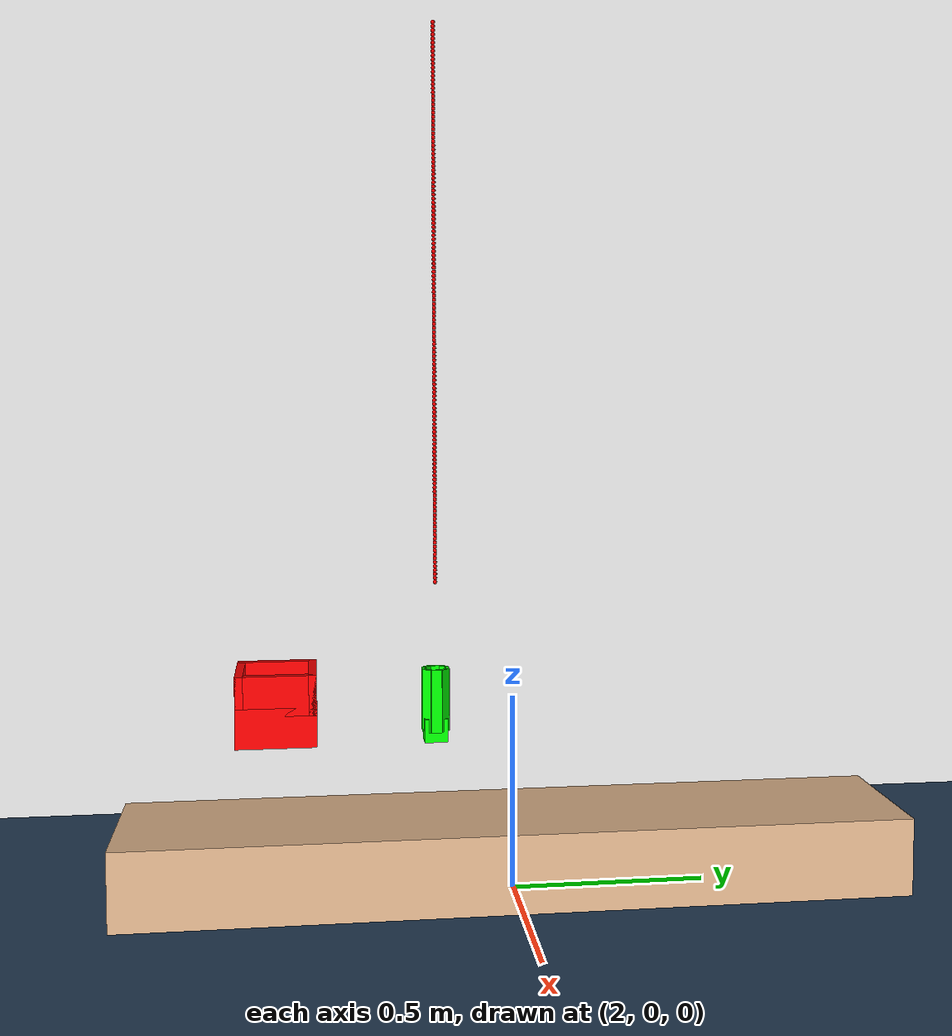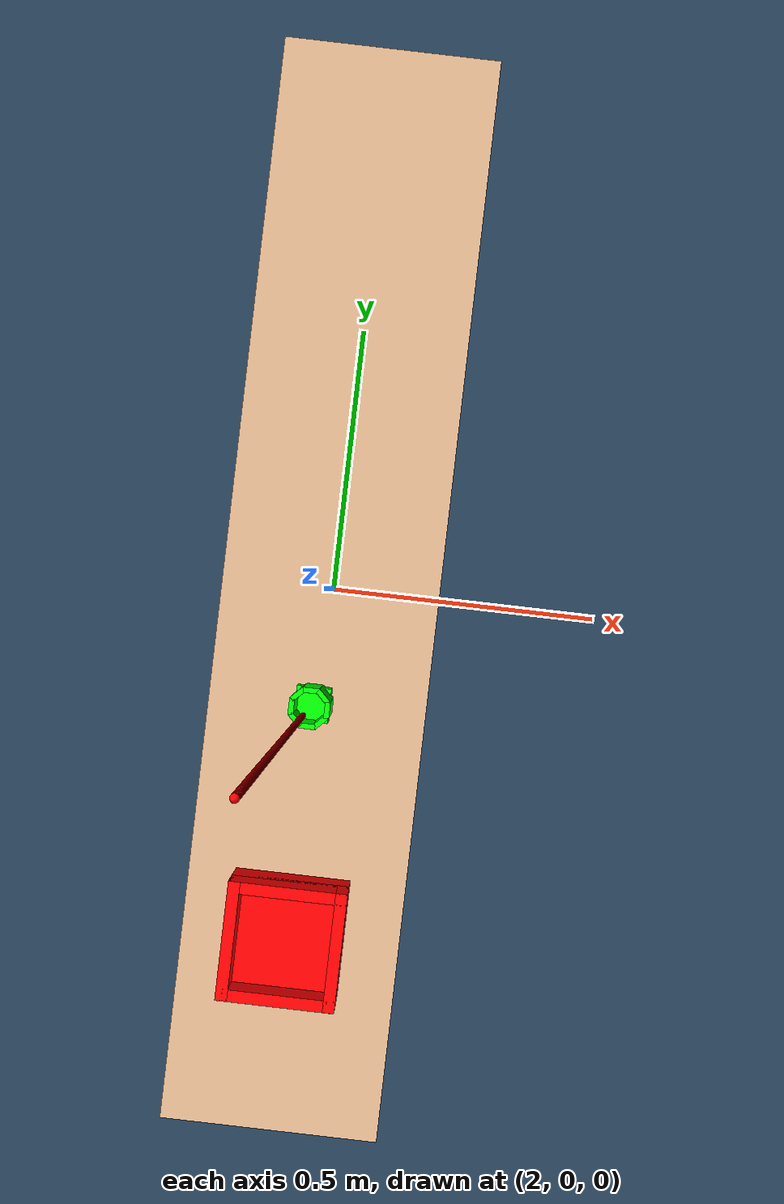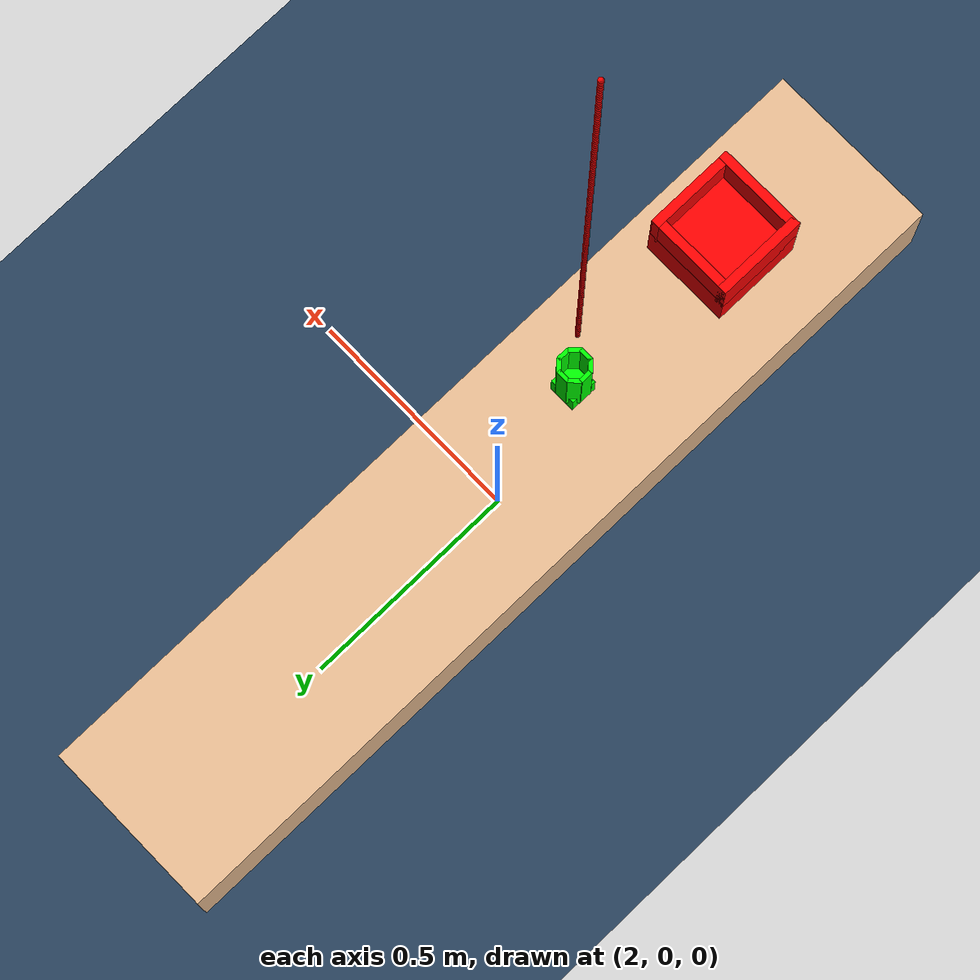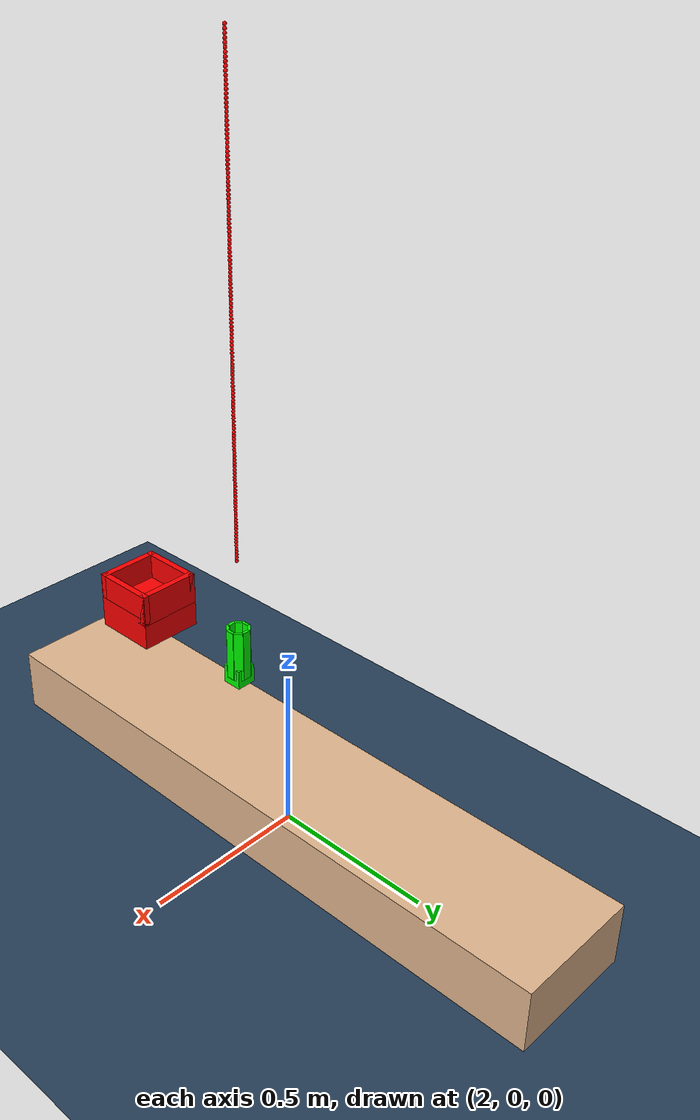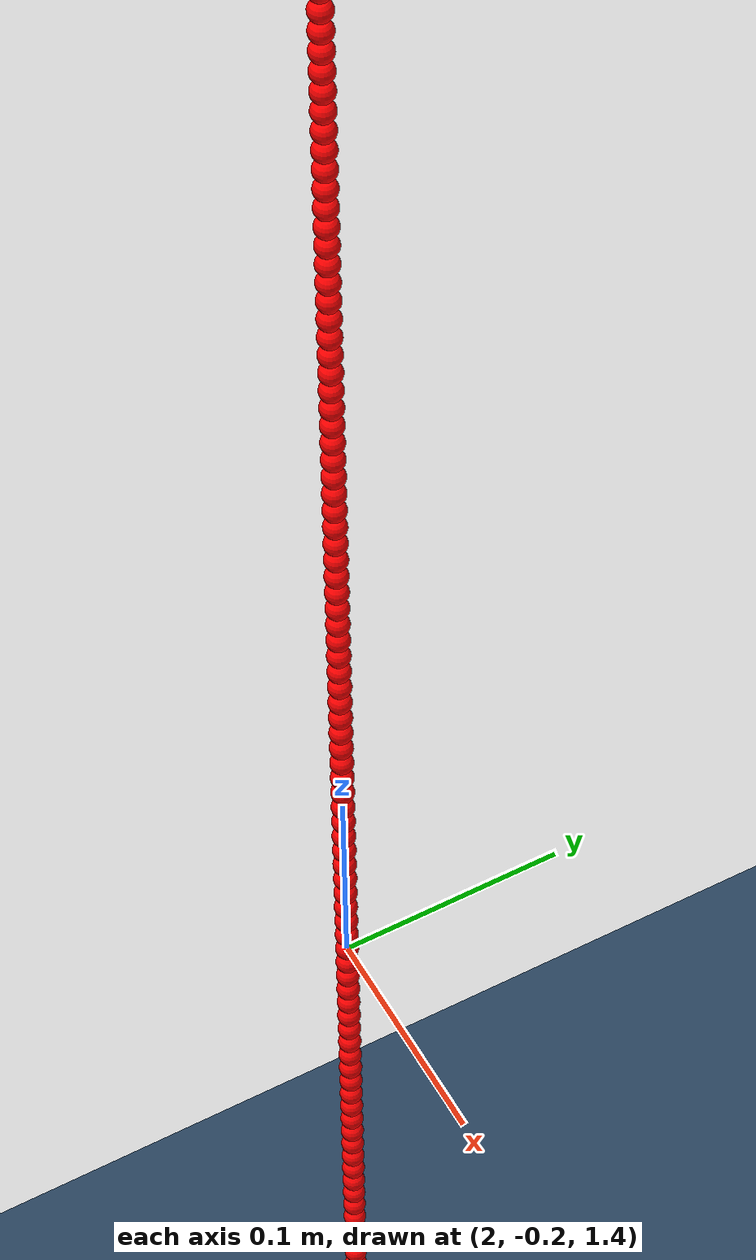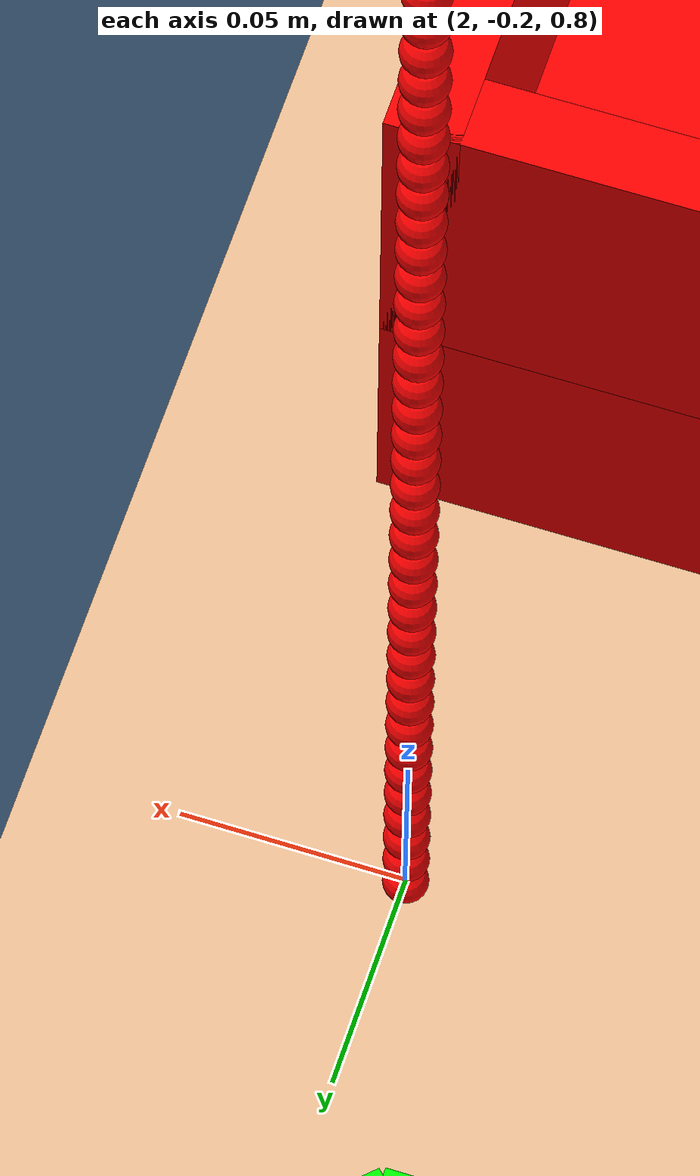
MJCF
<mujoco>
	<compiler angle="radian"/>
	<option timestep="0.001" integrator="RK4" solver="CG" gravity="0 0 -9.81">
		<flag sensornoise="disable" contact="enable"/>
	</option>

  <default>
        <geom condim="4" solimp="0.99 0.99 0" solref="0.01 1" friction="1 0.005 0.0001"/>
    </default>

	<asset>
		<texture name="grid" type="2d" builtin="checker" width="512" height="512" rgb1=".1 .2 .3" rgb2=".2 .3 .4" />
		<material name="grid" texture="grid" texrepeat="1 1" texuniform="true" reflectance=".2" />
	</asset>

	<worldbody>
		<geom name="floor" size="0 0 .05" type="plane" material="grid" condim="3" />
		<light diffuse="1 1 1" pos="0 0 4" dir="0 0 -1" />
		<light diffuse="1 1 1" pos="2 0 4" dir="0 0 -1" />
		<light diffuse="1 1 1" pos="1 0 4" dir="0 0 -1" />
	</worldbody>

	<worldbody>
		<body name="table" pos="2 0 0.1">
			<geom name="table_geom" type="box" size="0.2 1 0.1" rgba=".89 0.72 .56 1"/>
		</body>

		<body name="bowl" pos="2 -0.6 0.5">
			<freejoint/>
			<geom name="bottom" type="box" size="0.1 0.1 0.05" pos="0 0 -0.04" rgba="1 0 0 1"/>

			<geom name="side1" type="box" size="0.01 0.1 0.05" pos="0.09 0 0.04" rgba="1 0 0 1"/>
			<geom name="side2" type="box" size="0.01 0.1 0.05" pos="-0.09 0 0.04" rgba="1 0 0 1"/>
			<geom name="side3" type="box" size="0.1 0.01 0.05" pos="0 0.09 0.04" rgba="1 0 0 1"/>
			<geom name="side4" type="box" size="0.1 0.01 0.05" pos="0 -0.09 0.04" rgba="1 0 0 1"/>
		</body>

		<body name="free_cup" pos="2 -0.2 0.5">
		<freejoint/>
     <inertial pos="0.0 0.0 0.0" mass="0.01" diaginertia="0.0008 0.0008 0.00015" />
			<geom type="box" pos="0 0 -0.076" size="0.03 0.03 0.03" rgba="0 1 0 1"/>
			<geom type="box" pos="0.03 0 0" euler="0 0 0" size="0.0044 0.013420519420888278 0.08" rgba="0 1 0 1" />
			<geom type="box" pos="0.021213 0.021213 0" euler="0 0 0.7853981633974483" size="0.0044 0.013420519420888278 0.08" rgba="0 1 0 1" />
			<geom type="box" pos="0 0.03 0" euler="0 0 1.5707963267948966" size="0.0044 0.013420519420888278 0.08" rgba="0 1 0 1" />
			<geom type="box" pos="-0.021213 0.021213 0" euler="0 0 2.356194490192345" size="0.0044 0.013420519420888278 0.08" rgba="0 1 0 1" />
			<geom type="box" pos="-0.03 0 0" euler="0 0 3.141592653589793" size="0.0044 0.013420519420888278 0.08" rgba="0 1 0 1" />
			<geom type="box" pos="-0.021213 -0.021213 0" euler="0 0 -2.356194490192345" size="0.0044 0.013420519420888278 0.08" rgba="0 1 0 1" />
			<geom type="box" pos="0 -0.03 0" euler="0 0 -1.5707963267948966" size="0.0044 0.013420519420888278 0.08" rgba="0 1 0 1" />
			<geom type="box" pos="0.021213 -0.021213 0" euler="0 0 -0.7853981633974483" size="0.0044 0.013420519420888278 0.08" rgba="0 1 0 1" />
		</body>
	</worldbody>

	<worldbody>
		<body name="sync_ball0" pos="2 -0.2 0.8">
			<freejoint/><inertial pos="0.0 0.0 0.0" mass="0.0001" diaginertia="0.000000001 0.000000001 0.000000001" />
			<geom type="sphere" size="0.005" rgba="1 0 0 1"/>
		</body>
		<body name="sync_ball1" pos="2 -0.2 0.81">
			<freejoint/> <inertial pos="0.0 0.0 0.0" mass="0.0001" diaginertia="0.000000001 0.000000001 0.000000001" />
			<geom type="sphere" size="0.005" rgba="1 0 0 1"/>
		</body>
		<body name="sync_ball2" pos="2 -0.2 0.8200000000000001">
			<freejoint/> <inertial pos="0.0 0.0 0.0" mass="0.0001" diaginertia="0.000000001 0.000000001 0.000000001" />
			<geom type="sphere" size="0.005" rgba="1 0 0 1"/>
		</body>
		<body name="sync_ball3" pos="2 -0.2 0.8300000000000001">
			<freejoint/> <inertial pos="0.0 0.0 0.0" mass="0.0001" diaginertia="0.000000001 0.000000001 0.000000001" />
			<geom type="sphere" size="0.005" rgba="1 0 0 1"/>
		</body>
		<body name="sync_ball4" pos="2 -0.2 0.8400000000000001">
			<freejoint/> <inertial pos="0.0 0.0 0.0" mass="0.0001" diaginertia="0.000000001 0.000000001 0.000000001" />
			<geom type="sphere" size="0.005" rgba="1 0 0 1"/>
		</body>
		<body name="sync_ball5" pos="2 -0.2 0.8500000000000001">
			<freejoint/> <inertial pos="0.0 0.0 0.0" mass="0.0001" diaginertia="0.000000001 0.000000001 0.000000001" />
			<geom type="sphere" size="0.005" rgba="1 0 0 1"/>
		</body>
		<body name="sync_ball6" pos="2 -0.2 0.8600000000000001">
			<freejoint/> <inertial pos="0.0 0.0 0.0" mass="0.0001" diaginertia="0.000000001 0.000000001 0.000000001" />
			<geom type="sphere" size="0.005" rgba="1 0 0 1"/>
		</body>
		<body name="sync_ball7" pos="2 -0.2 0.8700000000000001">
			<freejoint/> <inertial pos="0.0 0.0 0.0" mass="0.0001" diaginertia="0.000000001 0.000000001 0.000000001" />
			<geom type="sphere" size="0.005" rgba="1 0 0 1"/>
		</body>
		<body name="sync_ball8" pos="2 -0.2 0.88">
			<freejoint/> <inertial pos="0.0 0.0 0.0" mass="0.0001" diaginertia="0.000000001 0.000000001 0.000000001" />
			<geom type="sphere" size="0.005" rgba="1 0 0 1"/>
		</body>
		<body name="sync_ball9" pos="2 -0.2 0.89">
			<freejoint/> <inertial pos="0.0 0.0 0.0" mass="0.0001" diaginertia="0.000000001 0.000000001 0.000000001" />
			<geom type="sphere" size="0.005" rgba="1 0 0 1"/>
		</body>
		<body name="sync_ball10" pos="2 -0.2 0.9">
			<freejoint/> <inertial pos="0.0 0.0 0.0" mass="0.0001" diaginertia="0.000000001 0.000000001 0.000000001" />
			<geom type="sphere" size="0.005" rgba="1 0 0 1"/>
		</body>
		<body name="sync_ball11" pos="2 -0.2 0.91">
			<freejoint/> <inertial pos="0.0 0.0 0.0" mass="0.0001" diaginertia="0.000000001 0.000000001 0.000000001" />
			<geom type="sphere" size="0.005" rgba="1 0 0 1"/>
		</body>
		<body name="sync_ball12" pos="2 -0.2 0.92">
			<freejoint/> <inertial pos="0.0 0.0 0.0" mass="0.0001" diaginertia="0.000000001 0.000000001 0.000000001" />
			<geom type="sphere" size="0.005" rgba="1 0 0 1"/>
		</body>
		<body name="sync_ball13" pos="2 -0.2 0.93">
			<freejoint/> <inertial pos="0.0 0.0 0.0" mass="0.0001" diaginertia="0.000000001 0.000000001 0.000000001" />
			<geom type="sphere" size="0.005" rgba="1 0 0 1"/>
		</body>
		<body name="sync_ball14" pos="2 -0.2 0.9400000000000001">
			<freejoint/> <inertial pos="0.0 0.0 0.0" mass="0.0001" diaginertia="0.000000001 0.000000001 0.000000001" />
			<geom type="sphere" size="0.005" rgba="1 0 0 1"/>
		</body>
		<body name="sync_ball15" pos="2 -0.2 0.9500000000000001">
			<freejoint/> <inertial pos="0.0 0.0 0.0" mass="0.0001" diaginertia="0.000000001 0.000000001 0.000000001" />
			<geom type="sphere" size="0.005" rgba="1 0 0 1"/>
		</body>
		<body name="sync_ball16" pos="2 -0.2 0.9600000000000001">
			<freejoint/> <inertial pos="0.0 0.0 0.0" mass="0.0001" diaginertia="0.000000001 0.000000001 0.000000001" />
			<geom type="sphere" size="0.005" rgba="1 0 0 1"/>
		</body>
		<body name="sync_ball17" pos="2 -0.2 0.9700000000000001">
			<freejoint/> <inertial pos="0.0 0.0 0.0" mass="0.0001" diaginertia="0.000000001 0.000000001 0.000000001" />
			<geom type="sphere" size="0.005" rgba="1 0 0 1"/>
		</body>
		<body name="sync_ball18" pos="2 -0.2 0.98">
			<freejoint/> <inertial pos="0.0 0.0 0.0" mass="0.0001" diaginertia="0.000000001 0.000000001 0.000000001" />
			<geom type="sphere" size="0.005" rgba="1 0 0 1"/>
		</body>
		<body name="sync_ball19" pos="2 -0.2 0.99">
			<freejoint/> <inertial pos="0.0 0.0 0.0" mass="0.0001" diaginertia="0.000000001 0.000000001 0.000000001" />
			<geom type="sphere" size="0.005" rgba="1 0 0 1"/>
		</body>
		<body name="sync_ball20" pos="2 -0.2 1.0">
			<freejoint/> <inertial pos="0.0 0.0 0.0" mass="0.0001" diaginertia="0.000000001 0.000000001 0.000000001" />
			<geom type="sphere" size="0.005" rgba="1 0 0 1"/>
		</body>
		<body name="sync_ball21" pos="2 -0.2 1.01">
			<freejoint/> <inertial pos="0.0 0.0 0.0" mass="0.0001" diaginertia="0.000000001 0.000000001 0.000000001" />
			<geom type="sphere" size="0.005" rgba="1 0 0 1"/>
		</body>
		<body name="sync_ball22" pos="2 -0.2 1.02">
			<freejoint/> <inertial pos="0.0 0.0 0.0" mass="0.0001" diaginertia="0.000000001 0.000000001 0.000000001" />
			<geom type="sphere" size="0.005" rgba="1 0 0 1"/>
		</body>
		<body name="sync_ball23" pos="2 -0.2 1.03">
			<freejoint/> <inertial pos="0.0 0.0 0.0" mass="0.0001" diaginertia="0.000000001 0.000000001 0.000000001" />
			<geom type="sphere" size="0.005" rgba="1 0 0 1"/>
		</body>
		<body name="sync_ball24" pos="2 -0.2 1.04">
			<freejoint/> <inertial pos="0.0 0.0 0.0" mass="0.0001" diaginertia="0.000000001 0.000000001 0.000000001" />
			<geom type="sphere" size="0.005" rgba="1 0 0 1"/>
		</body>
		<body name="sync_ball25" pos="2 -0.2 1.05">
			<freejoint/> <inertial pos="0.0 0.0 0.0" mass="0.0001" diaginertia="0.000000001 0.000000001 0.000000001" />
			<geom type="sphere" size="0.005" rgba="1 0 0 1"/>
		</body>
		<body name="sync_ball26" pos="2 -0.2 1.06">
			<freejoint/> <inertial pos="0.0 0.0 0.0" mass="0.0001" diaginertia="0.000000001 0.000000001 0.000000001" />
			<geom type="sphere" size="0.005" rgba="1 0 0 1"/>
		</body>
		<body name="sync_ball27" pos="2 -0.2 1.07">
			<freejoint/> <inertial pos="0.0 0.0 0.0" mass="0.0001" diaginertia="0.000000001 0.000000001 0.000000001" />
			<geom type="sphere" size="0.005" rgba="1 0 0 1"/>
		</body>
		<body name="sync_ball28" pos="2 -0.2 1.08">
			<freejoint/> <inertial pos="0.0 0.0 0.0" mass="0.0001" diaginertia="0.000000001 0.000000001 0.000000001" />
			<geom type="sphere" size="0.005" rgba="1 0 0 1"/>
		</body>
		<body name="sync_ball29" pos="2 -0.2 1.09">
			<freejoint/> <inertial pos="0.0 0.0 0.0" mass="0.0001" diaginertia="0.000000001 0.000000001 0.000000001" />
			<geom type="sphere" size="0.005" rgba="1 0 0 1"/>
		</body>
		<body name="sync_ball30" pos="2 -0.2 1.1">
			<freejoint/> <inertial pos="0.0 0.0 0.0" mass="0.0001" diaginertia="0.000000001 0.000000001 0.000000001" />
			<geom type="sphere" size="0.005" rgba="1 0 0 1"/>
		</body>
		<body name="sync_ball31" pos="2 -0.2 1.11">
			<freejoint/> <inertial pos="0.0 0.0 0.0" mass="0.0001" diaginertia="0.000000001 0.000000001 0.000000001" />
			<geom type="sphere" size="0.005" rgba="1 0 0 1"/>
		</body>
		<body name="sync_ball32" pos="2 -0.2 1.12">
			<freejoint/> <inertial pos="0.0 0.0 0.0" mass="0.0001" diaginertia="0.000000001 0.000000001 0.000000001" />
			<geom type="sphere" size="0.005" rgba="1 0 0 1"/>
		</body>
		<body name="sync_ball33" pos="2 -0.2 1.1300000000000001">
			<freejoint/> <inertial pos="0.0 0.0 0.0" mass="0.0001" diaginertia="0.000000001 0.000000001 0.000000001" />
			<geom type="sphere" size="0.005" rgba="1 0 0 1"/>
		</body>
		<body name="sync_ball34" pos="2 -0.2 1.1400000000000001">
			<freejoint/> <inertial pos="0.0 0.0 0.0" mass="0.0001" diaginertia="0.000000001 0.000000001 0.000000001" />
			<geom type="sphere" size="0.005" rgba="1 0 0 1"/>
		</body>
		<body name="sync_ball35" pos="2 -0.2 1.1500000000000001">
			<freejoint/> <inertial pos="0.0 0.0 0.0" mass="0.0001" diaginertia="0.000000001 0.000000001 0.000000001" />
			<geom type="sphere" size="0.005" rgba="1 0 0 1"/>
		</body>
		<body name="sync_ball36" pos="2 -0.2 1.1600000000000001">
			<freejoint/> <inertial pos="0.0 0.0 0.0" mass="0.0001" diaginertia="0.000000001 0.000000001 0.000000001" />
			<geom type="sphere" size="0.005" rgba="1 0 0 1"/>
		</body>
		<body name="sync_ball37" pos="2 -0.2 1.17">
			<freejoint/> <inertial pos="0.0 0.0 0.0" mass="0.0001" diaginertia="0.000000001 0.000000001 0.000000001" />
			<geom type="sphere" size="0.005" rgba="1 0 0 1"/>
		</body>
		<body name="sync_ball38" pos="2 -0.2 1.1800000000000002">
			<freejoint/> <inertial pos="0.0 0.0 0.0" mass="0.0001" diaginertia="0.000000001 0.000000001 0.000000001" />
			<geom type="sphere" size="0.005" rgba="1 0 0 1"/>
		</body>
		<body name="sync_ball39" pos="2 -0.2 1.19">
			<freejoint/> <inertial pos="0.0 0.0 0.0" mass="0.0001" diaginertia="0.000000001 0.000000001 0.000000001" />
			<geom type="sphere" size="0.005" rgba="1 0 0 1"/>
		</body>
		<body name="sync_ball40" pos="2 -0.2 1.2000000000000002">
			<freejoint/> <inertial pos="0.0 0.0 0.0" mass="0.0001" diaginertia="0.000000001 0.000000001 0.000000001" />
			<geom type="sphere" size="0.005" rgba="1 0 0 1"/>
		</body>
		<body name="sync_ball41" pos="2 -0.2 1.21">
			<freejoint/> <inertial pos="0.0 0.0 0.0" mass="0.0001" diaginertia="0.000000001 0.000000001 0.000000001" />
			<geom type="sphere" size="0.005" rgba="1 0 0 1"/>
		</body>
		<body name="sync_ball42" pos="2 -0.2 1.22">
			<freejoint/> <inertial pos="0.0 0.0 0.0" mass="0.0001" diaginertia="0.000000001 0.000000001 0.000000001" />
			<geom type="sphere" size="0.005" rgba="1 0 0 1"/>
		</body>
		<body name="sync_ball43" pos="2 -0.2 1.23">
			<freejoint/> <inertial pos="0.0 0.0 0.0" mass="0.0001" diaginertia="0.000000001 0.000000001 0.000000001" />
			<geom type="sphere" size="0.005" rgba="1 0 0 1"/>
		</body>
		<body name="sync_ball44" pos="2 -0.2 1.24">
			<freejoint/> <inertial pos="0.0 0.0 0.0" mass="0.0001" diaginertia="0.000000001 0.000000001 0.000000001" />
			<geom type="sphere" size="0.005" rgba="1 0 0 1"/>
		</body>
		<body name="sync_ball45" pos="2 -0.2 1.25">
			<freejoint/> <inertial pos="0.0 0.0 0.0" mass="0.0001" diaginertia="0.000000001 0.000000001 0.000000001" />
			<geom type="sphere" size="0.005" rgba="1 0 0 1"/>
		</body>
		<body name="sync_ball46" pos="2 -0.2 1.26">
			<freejoint/> <inertial pos="0.0 0.0 0.0" mass="0.0001" diaginertia="0.000000001 0.000000001 0.000000001" />
			<geom type="sphere" size="0.005" rgba="1 0 0 1"/>
		</body>
		<body name="sync_ball47" pos="2 -0.2 1.27">
			<freejoint/> <inertial pos="0.0 0.0 0.0" mass="0.0001" diaginertia="0.000000001 0.000000001 0.000000001" />
			<geom type="sphere" size="0.005" rgba="1 0 0 1"/>
		</body>
		<body name="sync_ball48" pos="2 -0.2 1.28">
			<freejoint/> <inertial pos="0.0 0.0 0.0" mass="0.0001" diaginertia="0.000000001 0.000000001 0.000000001" />
			<geom type="sphere" size="0.005" rgba="1 0 0 1"/>
		</body>
		<body name="sync_ball49" pos="2 -0.2 1.29">
			<freejoint/> <inertial pos="0.0 0.0 0.0" mass="0.0001" diaginertia="0.000000001 0.000000001 0.000000001" />
			<geom type="sphere" size="0.005" rgba="1 0 0 1"/>
		</body>
		<body name="sync_ball50" pos="2 -0.2 1.3">
			<freejoint/> <inertial pos="0.0 0.0 0.0" mass="0.0001" diaginertia="0.000000001 0.000000001 0.000000001" />
			<geom type="sphere" size="0.005" rgba="1 0 0 1"/>
		</body>
		<body name="sync_ball51" pos="2 -0.2 1.31">
			<freejoint/> <inertial pos="0.0 0.0 0.0" mass="0.0001" diaginertia="0.000000001 0.000000001 0.000000001" />
			<geom type="sphere" size="0.005" rgba="1 0 0 1"/>
		</body>
		<body name="sync_ball52" pos="2 -0.2 1.32">
			<freejoint/> <inertial pos="0.0 0.0 0.0" mass="0.0001" diaginertia="0.000000001 0.000000001 0.000000001" />
			<geom type="sphere" size="0.005" rgba="1 0 0 1"/>
		</body>
		<body name="sync_ball53" pos="2 -0.2 1.33">
			<freejoint/> <inertial pos="0.0 0.0 0.0" mass="0.0001" diaginertia="0.000000001 0.000000001 0.000000001" />
			<geom type="sphere" size="0.005" rgba="1 0 0 1"/>
		</body>
		<body name="sync_ball54" pos="2 -0.2 1.34">
			<freejoint/> <inertial pos="0.0 0.0 0.0" mass="0.0001" diaginertia="0.000000001 0.000000001 0.000000001" />
			<geom type="sphere" size="0.005" rgba="1 0 0 1"/>
		</body>
		<body name="sync_ball55" pos="2 -0.2 1.35">
			<freejoint/> <inertial pos="0.0 0.0 0.0" mass="0.0001" diaginertia="0.000000001 0.000000001 0.000000001" />
			<geom type="sphere" size="0.005" rgba="1 0 0 1"/>
		</body>
		<body name="sync_ball56" pos="2 -0.2 1.36">
			<freejoint/> <inertial pos="0.0 0.0 0.0" mass="0.0001" diaginertia="0.000000001 0.000000001 0.000000001" />
			<geom type="sphere" size="0.005" rgba="1 0 0 1"/>
		</body>
		<body name="sync_ball57" pos="2 -0.2 1.37">
			<freejoint/> <inertial pos="0.0 0.0 0.0" mass="0.0001" diaginertia="0.000000001 0.000000001 0.000000001" />
			<geom type="sphere" size="0.005" rgba="1 0 0 1"/>
		</body>
		<body name="sync_ball58" pos="2 -0.2 1.38">
			<freejoint/> <inertial pos="0.0 0.0 0.0" mass="0.0001" diaginertia="0.000000001 0.000000001 0.000000001" />
			<geom type="sphere" size="0.005" rgba="1 0 0 1"/>
		</body>
		<body name="sync_ball59" pos="2 -0.2 1.3900000000000001">
			<freejoint/> <inertial pos="0.0 0.0 0.0" mass="0.0001" diaginertia="0.000000001 0.000000001 0.000000001" />
			<geom type="sphere" size="0.005" rgba="1 0 0 1"/>
		</body>
		<body name="sync_ball60" pos="2 -0.2 1.4">
			<freejoint/> <inertial pos="0.0 0.0 0.0" mass="0.0001" diaginertia="0.000000001 0.000000001 0.000000001" />
			<geom type="sphere" size="0.005" rgba="1 0 0 1"/>
		</body>
		<body name="sync_ball61" pos="2 -0.2 1.4100000000000001">
			<freejoint/> <inertial pos="0.0 0.0 0.0" mass="0.0001" diaginertia="0.000000001 0.000000001 0.000000001" />
			<geom type="sphere" size="0.005" rgba="1 0 0 1"/>
		</body>
		<body name="sync_ball62" pos="2 -0.2 1.42">
			<freejoint/> <inertial pos="0.0 0.0 0.0" mass="0.0001" diaginertia="0.000000001 0.000000001 0.000000001" />
			<geom type="sphere" size="0.005" rgba="1 0 0 1"/>
		</body>
		<body name="sync_ball63" pos="2 -0.2 1.4300000000000002">
			<freejoint/> <inertial pos="0.0 0.0 0.0" mass="0.0001" diaginertia="0.000000001 0.000000001 0.000000001" />
			<geom type="sphere" size="0.005" rgba="1 0 0 1"/>
		</body>
		<body name="sync_ball64" pos="2 -0.2 1.44">
			<freejoint/> <inertial pos="0.0 0.0 0.0" mass="0.0001" diaginertia="0.000000001 0.000000001 0.000000001" />
			<geom type="sphere" size="0.005" rgba="1 0 0 1"/>
		</body>
		<body name="sync_ball65" pos="2 -0.2 1.4500000000000002">
			<freejoint/> <inertial pos="0.0 0.0 0.0" mass="0.0001" diaginertia="0.000000001 0.000000001 0.000000001" />
			<geom type="sphere" size="0.005" rgba="1 0 0 1"/>
		</body>
		<body name="sync_ball66" pos="2 -0.2 1.46">
			<freejoint/> <inertial pos="0.0 0.0 0.0" mass="0.0001" diaginertia="0.000000001 0.000000001 0.000000001" />
			<geom type="sphere" size="0.005" rgba="1 0 0 1"/>
		</body>
		<body name="sync_ball67" pos="2 -0.2 1.4700000000000002">
			<freejoint/> <inertial pos="0.0 0.0 0.0" mass="0.0001" diaginertia="0.000000001 0.000000001 0.000000001" />
			<geom type="sphere" size="0.005" rgba="1 0 0 1"/>
		</body>
		<body name="sync_ball68" pos="2 -0.2 1.48">
			<freejoint/> <inertial pos="0.0 0.0 0.0" mass="0.0001" diaginertia="0.000000001 0.000000001 0.000000001" />
			<geom type="sphere" size="0.005" rgba="1 0 0 1"/>
		</body>
		<body name="sync_ball69" pos="2 -0.2 1.4900000000000002">
			<freejoint/> <inertial pos="0.0 0.0 0.0" mass="0.0001" diaginertia="0.000000001 0.000000001 0.000000001" />
			<geom type="sphere" size="0.005" rgba="1 0 0 1"/>
		</body>
		<body name="sync_ball70" pos="2 -0.2 1.5">
			<freejoint/> <inertial pos="0.0 0.0 0.0" mass="0.0001" diaginertia="0.000000001 0.000000001 0.000000001" />
			<geom type="sphere" size="0.005" rgba="1 0 0 1"/>
		</body>
		<body name="sync_ball71" pos="2 -0.2 1.51">
			<freejoint/> <inertial pos="0.0 0.0 0.0" mass="0.0001" diaginertia="0.000000001 0.000000001 0.000000001" />
			<geom type="sphere" size="0.005" rgba="1 0 0 1"/>
		</body>
		<body name="sync_ball72" pos="2 -0.2 1.52">
			<freejoint/> <inertial pos="0.0 0.0 0.0" mass="0.0001" diaginertia="0.000000001 0.000000001 0.000000001" />
			<geom type="sphere" size="0.005" rgba="1 0 0 1"/>
		</body>
		<body name="sync_ball73" pos="2 -0.2 1.53">
			<freejoint/> <inertial pos="0.0 0.0 0.0" mass="0.0001" diaginertia="0.000000001 0.000000001 0.000000001" />
			<geom type="sphere" size="0.005" rgba="1 0 0 1"/>
		</body>
		<body name="sync_ball74" pos="2 -0.2 1.54">
			<freejoint/> <inertial pos="0.0 0.0 0.0" mass="0.0001" diaginertia="0.000000001 0.000000001 0.000000001" />
			<geom type="sphere" size="0.005" rgba="1 0 0 1"/>
		</body>
		<body name="sync_ball75" pos="2 -0.2 1.55">
			<freejoint/> <inertial pos="0.0 0.0 0.0" mass="0.0001" diaginertia="0.000000001 0.000000001 0.000000001" />
			<geom type="sphere" size="0.005" rgba="1 0 0 1"/>
		</body>
		<body name="sync_ball76" pos="2 -0.2 1.56">
			<freejoint/> <inertial pos="0.0 0.0 0.0" mass="0.0001" diaginertia="0.000000001 0.000000001 0.000000001" />
			<geom type="sphere" size="0.005" rgba="1 0 0 1"/>
		</body>
		<body name="sync_ball77" pos="2 -0.2 1.57">
			<freejoint/> <inertial pos="0.0 0.0 0.0" mass="0.0001" diaginertia="0.000000001 0.000000001 0.000000001" />
			<geom type="sphere" size="0.005" rgba="1 0 0 1"/>
		</body>
		<body name="sync_ball78" pos="2 -0.2 1.58">
			<freejoint/> <inertial pos="0.0 0.0 0.0" mass="0.0001" diaginertia="0.000000001 0.000000001 0.000000001" />
			<geom type="sphere" size="0.005" rgba="1 0 0 1"/>
		</body>
		<body name="sync_ball79" pos="2 -0.2 1.59">
			<freejoint/> <inertial pos="0.0 0.0 0.0" mass="0.0001" diaginertia="0.000000001 0.000000001 0.000000001" />
			<geom type="sphere" size="0.005" rgba="1 0 0 1"/>
		</body>
		<body name="sync_ball80" pos="2 -0.2 1.6">
			<freejoint/> <inertial pos="0.0 0.0 0.0" mass="0.0001" diaginertia="0.000000001 0.000000001 0.000000001" />
			<geom type="sphere" size="0.005" rgba="1 0 0 1"/>
		</body>
		<body name="sync_ball81" pos="2 -0.2 1.61">
			<freejoint/> <inertial pos="0.0 0.0 0.0" mass="0.0001" diaginertia="0.000000001 0.000000001 0.000000001" />
			<geom type="sphere" size="0.005" rgba="1 0 0 1"/>
		</body>
		<body name="sync_ball82" pos="2 -0.2 1.62">
			<freejoint/> <inertial pos="0.0 0.0 0.0" mass="0.0001" diaginertia="0.000000001 0.000000001 0.000000001" />
			<geom type="sphere" size="0.005" rgba="1 0 0 1"/>
		</body>
		<body name="sync_ball83" pos="2 -0.2 1.6300000000000001">
			<freejoint/> <inertial pos="0.0 0.0 0.0" mass="0.0001" diaginertia="0.000000001 0.000000001 0.000000001" />
			<geom type="sphere" size="0.005" rgba="1 0 0 1"/>
		</body>
		<body name="sync_ball84" pos="2 -0.2 1.6400000000000001">
			<freejoint/> <inertial pos="0.0 0.0 0.0" mass="0.0001" diaginertia="0.000000001 0.000000001 0.000000001" />
			<geom type="sphere" size="0.005" rgba="1 0 0 1"/>
		</body>
		<body name="sync_ball85" pos="2 -0.2 1.65">
			<freejoint/> <inertial pos="0.0 0.0 0.0" mass="0.0001" diaginertia="0.000000001 0.000000001 0.000000001" />
			<geom type="sphere" size="0.005" rgba="1 0 0 1"/>
		</body>
		<body name="sync_ball86" pos="2 -0.2 1.6600000000000001">
			<freejoint/> <inertial pos="0.0 0.0 0.0" mass="0.0001" diaginertia="0.000000001 0.000000001 0.000000001" />
			<geom type="sphere" size="0.005" rgba="1 0 0 1"/>
		</body>
		<body name="sync_ball87" pos="2 -0.2 1.67">
			<freejoint/> <inertial pos="0.0 0.0 0.0" mass="0.0001" diaginertia="0.000000001 0.000000001 0.000000001" />
			<geom type="sphere" size="0.005" rgba="1 0 0 1"/>
		</body>
		<body name="sync_ball88" pos="2 -0.2 1.6800000000000002">
			<freejoint/> <inertial pos="0.0 0.0 0.0" mass="0.0001" diaginertia="0.000000001 0.000000001 0.000000001" />
			<geom type="sphere" size="0.005" rgba="1 0 0 1"/>
		</body>
		<body name="sync_ball89" pos="2 -0.2 1.69">
			<freejoint/> <inertial pos="0.0 0.0 0.0" mass="0.0001" diaginertia="0.000000001 0.000000001 0.000000001" />
			<geom type="sphere" size="0.005" rgba="1 0 0 1"/>
		</body>
		<body name="sync_ball90" pos="2 -0.2 1.7000000000000002">
			<freejoint/> <inertial pos="0.0 0.0 0.0" mass="0.0001" diaginertia="0.000000001 0.000000001 0.000000001" />
			<geom type="sphere" size="0.005" rgba="1 0 0 1"/>
		</body>
		<body name="sync_ball91" pos="2 -0.2 1.71">
			<freejoint/> <inertial pos="0.0 0.0 0.0" mass="0.0001" diaginertia="0.000000001 0.000000001 0.000000001" />
			<geom type="sphere" size="0.005" rgba="1 0 0 1"/>
		</body>
		<body name="sync_ball92" pos="2 -0.2 1.7200000000000002">
			<freejoint/> <inertial pos="0.0 0.0 0.0" mass="0.0001" diaginertia="0.000000001 0.000000001 0.000000001" />
			<geom type="sphere" size="0.005" rgba="1 0 0 1"/>
		</body>
		<body name="sync_ball93" pos="2 -0.2 1.73">
			<freejoint/> <inertial pos="0.0 0.0 0.0" mass="0.0001" diaginertia="0.000000001 0.000000001 0.000000001" />
			<geom type="sphere" size="0.005" rgba="1 0 0 1"/>
		</body>
		<body name="sync_ball94" pos="2 -0.2 1.7400000000000002">
			<freejoint/> <inertial pos="0.0 0.0 0.0" mass="0.0001" diaginertia="0.000000001 0.000000001 0.000000001" />
			<geom type="sphere" size="0.005" rgba="1 0 0 1"/>
		</body>
		<body name="sync_ball95" pos="2 -0.2 1.75">
			<freejoint/> <inertial pos="0.0 0.0 0.0" mass="0.0001" diaginertia="0.000000001 0.000000001 0.000000001" />
			<geom type="sphere" size="0.005" rgba="1 0 0 1"/>
		</body>
		<body name="sync_ball96" pos="2 -0.2 1.76">
			<freejoint/> <inertial pos="0.0 0.0 0.0" mass="0.0001" diaginertia="0.000000001 0.000000001 0.000000001" />
			<geom type="sphere" size="0.005" rgba="1 0 0 1"/>
		</body>
		<body name="sync_ball97" pos="2 -0.2 1.77">
			<freejoint/> <inertial pos="0.0 0.0 0.0" mass="0.0001" diaginertia="0.000000001 0.000000001 0.000000001" />
			<geom type="sphere" size="0.005" rgba="1 0 0 1"/>
		</body>
		<body name="sync_ball98" pos="2 -0.2 1.78">
			<freejoint/> <inertial pos="0.0 0.0 0.0" mass="0.0001" diaginertia="0.000000001 0.000000001 0.000000001" />
			<geom type="sphere" size="0.005" rgba="1 0 0 1"/>
		</body>
		<body name="sync_ball99" pos="2 -0.2 1.79">
			<freejoint/> <inertial pos="0.0 0.0 0.0" mass="0.0001" diaginertia="0.000000001 0.000000001 0.000000001" />
			<geom type="sphere" size="0.005" rgba="1 0 0 1"/>
		</body>
		<body name="sync_ball100" pos="2 -0.2 1.8">
			<freejoint/> <inertial pos="0.0 0.0 0.0" mass="0.0001" diaginertia="0.000000001 0.000000001 0.000000001" />
			<geom type="sphere" size="0.005" rgba="1 0 0 1"/>
		</body>
		<body name="sync_ball101" pos="2 -0.2 1.81">
			<freejoint/> <inertial pos="0.0 0.0 0.0" mass="0.0001" diaginertia="0.000000001 0.000000001 0.000000001" />
			<geom type="sphere" size="0.005" rgba="1 0 0 1"/>
		</body>
		<body name="sync_ball102" pos="2 -0.2 1.82">
			<freejoint/> <inertial pos="0.0 0.0 0.0" mass="0.0001" diaginertia="0.000000001 0.000000001 0.000000001" />
			<geom type="sphere" size="0.005" rgba="1 0 0 1"/>
		</body>
		<body name="sync_ball103" pos="2 -0.2 1.83">
			<freejoint/> <inertial pos="0.0 0.0 0.0" mass="0.0001" diaginertia="0.000000001 0.000000001 0.000000001" />
			<geom type="sphere" size="0.005" rgba="1 0 0 1"/>
		</body>
		<body name="sync_ball104" pos="2 -0.2 1.84">
			<freejoint/> <inertial pos="0.0 0.0 0.0" mass="0.0001" diaginertia="0.000000001 0.000000001 0.000000001" />
			<geom type="sphere" size="0.005" rgba="1 0 0 1"/>
		</body>
		<body name="sync_ball105" pos="2 -0.2 1.85">
			<freejoint/> <inertial pos="0.0 0.0 0.0" mass="0.0001" diaginertia="0.000000001 0.000000001 0.000000001" />
			<geom type="sphere" size="0.005" rgba="1 0 0 1"/>
		</body>
		<body name="sync_ball106" pos="2 -0.2 1.86">
			<freejoint/> <inertial pos="0.0 0.0 0.0" mass="0.0001" diaginertia="0.000000001 0.000000001 0.000000001" />
			<geom type="sphere" size="0.005" rgba="1 0 0 1"/>
		</body>
		<body name="sync_ball107" pos="2 -0.2 1.87">
			<freejoint/> <inertial pos="0.0 0.0 0.0" mass="0.0001" diaginertia="0.000000001 0.000000001 0.000000001" />
			<geom type="sphere" size="0.005" rgba="1 0 0 1"/>
		</body>
		<body name="sync_ball108" pos="2 -0.2 1.8800000000000001">
			<freejoint/> <inertial pos="0.0 0.0 0.0" mass="0.0001" diaginertia="0.000000001 0.000000001 0.000000001" />
			<geom type="sphere" size="0.005" rgba="1 0 0 1"/>
		</body>
		<body name="sync_ball109" pos="2 -0.2 1.8900000000000001">
			<freejoint/> <inertial pos="0.0 0.0 0.0" mass="0.0001" diaginertia="0.000000001 0.000000001 0.000000001" />
			<geom type="sphere" size="0.005" rgba="1 0 0 1"/>
		</body>
		<body name="sync_ball110" pos="2 -0.2 1.9000000000000001">
			<freejoint/> <inertial pos="0.0 0.0 0.0" mass="0.0001" diaginertia="0.000000001 0.000000001 0.000000001" />
			<geom type="sphere" size="0.005" rgba="1 0 0 1"/>
		</body>
		<body name="sync_ball111" pos="2 -0.2 1.9100000000000001">
			<freejoint/> <inertial pos="0.0 0.0 0.0" mass="0.0001" diaginertia="0.000000001 0.000000001 0.000000001" />
			<geom type="sphere" size="0.005" rgba="1 0 0 1"/>
		</body>
		<body name="sync_ball112" pos="2 -0.2 1.9200000000000002">
			<freejoint/> <inertial pos="0.0 0.0 0.0" mass="0.0001" diaginertia="0.000000001 0.000000001 0.000000001" />
			<geom type="sphere" size="0.005" rgba="1 0 0 1"/>
		</body>
		<body name="sync_ball113" pos="2 -0.2 1.9300000000000002">
			<freejoint/> <inertial pos="0.0 0.0 0.0" mass="0.0001" diaginertia="0.000000001 0.000000001 0.000000001" />
			<geom type="sphere" size="0.005" rgba="1 0 0 1"/>
		</body>
		<body name="sync_ball114" pos="2 -0.2 1.9400000000000002">
			<freejoint/> <inertial pos="0.0 0.0 0.0" mass="0.0001" diaginertia="0.000000001 0.000000001 0.000000001" />
			<geom type="sphere" size="0.005" rgba="1 0 0 1"/>
		</body>
		<body name="sync_ball115" pos="2 -0.2 1.9500000000000002">
			<freejoint/> <inertial pos="0.0 0.0 0.0" mass="0.0001" diaginertia="0.000000001 0.000000001 0.000000001" />
			<geom type="sphere" size="0.005" rgba="1 0 0 1"/>
		</body>
		<body name="sync_ball116" pos="2 -0.2 1.96">
			<freejoint/> <inertial pos="0.0 0.0 0.0" mass="0.0001" diaginertia="0.000000001 0.000000001 0.000000001" />
			<geom type="sphere" size="0.005" rgba="1 0 0 1"/>
		</body>
		<body name="sync_ball117" pos="2 -0.2 1.97">
			<freejoint/> <inertial pos="0.0 0.0 0.0" mass="0.0001" diaginertia="0.000000001 0.000000001 0.000000001" />
			<geom type="sphere" size="0.005" rgba="1 0 0 1"/>
		</body>
		<body name="sync_ball118" pos="2 -0.2 1.98">
			<freejoint/> <inertial pos="0.0 0.0 0.0" mass="0.0001" diaginertia="0.000000001 0.000000001 0.000000001" />
			<geom type="sphere" size="0.005" rgba="1 0 0 1"/>
		</body>
		<body name="sync_ball119" pos="2 -0.2 1.99">
			<freejoint/> <inertial pos="0.0 0.0 0.0" mass="0.0001" diaginertia="0.000000001 0.000000001 0.000000001" />
			<geom type="sphere" size="0.005" rgba="1 0 0 1"/>
		</body>
		<body name="sync_ball120" pos="2 -0.2 2.0">
			<freejoint/> <inertial pos="0.0 0.0 0.0" mass="0.0001" diaginertia="0.000000001 0.000000001 0.000000001" />
			<geom type="sphere" size="0.005" rgba="1 0 0 1"/>
		</body>
		<body name="sync_ball121" pos="2 -0.2 2.01">
			<freejoint/> <inertial pos="0.0 0.0 0.0" mass="0.0001" diaginertia="0.000000001 0.000000001 0.000000001" />
			<geom type="sphere" size="0.005" rgba="1 0 0 1"/>
		</body>
		<body name="sync_ball122" pos="2 -0.2 2.02">
			<freejoint/> <inertial pos="0.0 0.0 0.0" mass="0.0001" diaginertia="0.000000001 0.000000001 0.000000001" />
			<geom type="sphere" size="0.005" rgba="1 0 0 1"/>
		</body>
		<body name="sync_ball123" pos="2 -0.2 2.0300000000000002">
			<freejoint/> <inertial pos="0.0 0.0 0.0" mass="0.0001" diaginertia="0.000000001 0.000000001 0.000000001" />
			<geom type="sphere" size="0.005" rgba="1 0 0 1"/>
		</body>
		<body name="sync_ball124" pos="2 -0.2 2.04">
			<freejoint/> <inertial pos="0.0 0.0 0.0" mass="0.0001" diaginertia="0.000000001 0.000000001 0.000000001" />
			<geom type="sphere" size="0.005" rgba="1 0 0 1"/>
		</body>
		<body name="sync_ball125" pos="2 -0.2 2.05">
			<freejoint/> <inertial pos="0.0 0.0 0.0" mass="0.0001" diaginertia="0.000000001 0.000000001 0.000000001" />
			<geom type="sphere" size="0.005" rgba="1 0 0 1"/>
		</body>
		<body name="sync_ball126" pos="2 -0.2 2.06">
			<freejoint/> <inertial pos="0.0 0.0 0.0" mass="0.0001" diaginertia="0.000000001 0.000000001 0.000000001" />
			<geom type="sphere" size="0.005" rgba="1 0 0 1"/>
		</body>
		<body name="sync_ball127" pos="2 -0.2 2.0700000000000003">
			<freejoint/> <inertial pos="0.0 0.0 0.0" mass="0.0001" diaginertia="0.000000001 0.000000001 0.000000001" />
			<geom type="sphere" size="0.005" rgba="1 0 0 1"/>
		</body>
		<body name="sync_ball128" pos="2 -0.2 2.08">
			<freejoint/> <inertial pos="0.0 0.0 0.0" mass="0.0001" diaginertia="0.000000001 0.000000001 0.000000001" />
			<geom type="sphere" size="0.005" rgba="1 0 0 1"/>
		</body>
		<body name="sync_ball129" pos="2 -0.2 2.09">
			<freejoint/> <inertial pos="0.0 0.0 0.0" mass="0.0001" diaginertia="0.000000001 0.000000001 0.000000001" />
			<geom type="sphere" size="0.005" rgba="1 0 0 1"/>
		</body>
		<body name="sync_ball130" pos="2 -0.2 2.1">
			<freejoint/> <inertial pos="0.0 0.0 0.0" mass="0.0001" diaginertia="0.000000001 0.000000001 0.000000001" />
			<geom type="sphere" size="0.005" rgba="1 0 0 1"/>
		</body>
		<body name="sync_ball131" pos="2 -0.2 2.1100000000000003">
			<freejoint/> <inertial pos="0.0 0.0 0.0" mass="0.0001" diaginertia="0.000000001 0.000000001 0.000000001" />
			<geom type="sphere" size="0.005" rgba="1 0 0 1"/>
		</body>
		<body name="sync_ball132" pos="2 -0.2 2.12">
			<freejoint/> <inertial pos="0.0 0.0 0.0" mass="0.0001" diaginertia="0.000000001 0.000000001 0.000000001" />
			<geom type="sphere" size="0.005" rgba="1 0 0 1"/>
		</body>
		<body name="sync_ball133" pos="2 -0.2 2.13">
			<freejoint/> <inertial pos="0.0 0.0 0.0" mass="0.0001" diaginertia="0.000000001 0.000000001 0.000000001" />
			<geom type="sphere" size="0.005" rgba="1 0 0 1"/>
		</body>
		<body name="sync_ball134" pos="2 -0.2 2.14">
			<freejoint/> <inertial pos="0.0 0.0 0.0" mass="0.0001" diaginertia="0.000000001 0.000000001 0.000000001" />
			<geom type="sphere" size="0.005" rgba="1 0 0 1"/>
		</body>
		<body name="sync_ball135" pos="2 -0.2 2.1500000000000004">
			<freejoint/> <inertial pos="0.0 0.0 0.0" mass="0.0001" diaginertia="0.000000001 0.000000001 0.000000001" />
			<geom type="sphere" size="0.005" rgba="1 0 0 1"/>
		</body>
		<body name="sync_ball136" pos="2 -0.2 2.16">
			<freejoint/> <inertial pos="0.0 0.0 0.0" mass="0.0001" diaginertia="0.000000001 0.000000001 0.000000001" />
			<geom type="sphere" size="0.005" rgba="1 0 0 1"/>
		</body>
		<body name="sync_ball137" pos="2 -0.2 2.17">
			<freejoint/> <inertial pos="0.0 0.0 0.0" mass="0.0001" diaginertia="0.000000001 0.000000001 0.000000001" />
			<geom type="sphere" size="0.005" rgba="1 0 0 1"/>
		</body>
		<body name="sync_ball138" pos="2 -0.2 2.18">
			<freejoint/> <inertial pos="0.0 0.0 0.0" mass="0.0001" diaginertia="0.000000001 0.000000001 0.000000001" />
			<geom type="sphere" size="0.005" rgba="1 0 0 1"/>
		</body>
		<body name="sync_ball139" pos="2 -0.2 2.1900000000000004">
			<freejoint/> <inertial pos="0.0 0.0 0.0" mass="0.0001" diaginertia="0.000000001 0.000000001 0.000000001" />
			<geom type="sphere" size="0.005" rgba="1 0 0 1"/>
		</body>

	</worldbody>

</mujoco>
